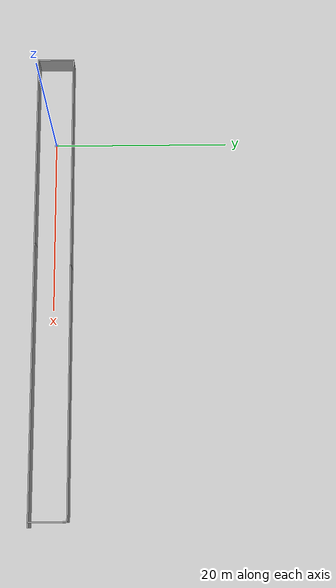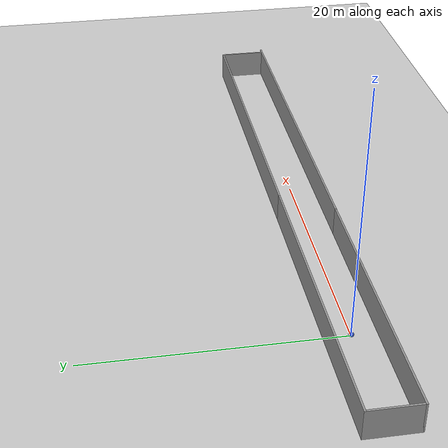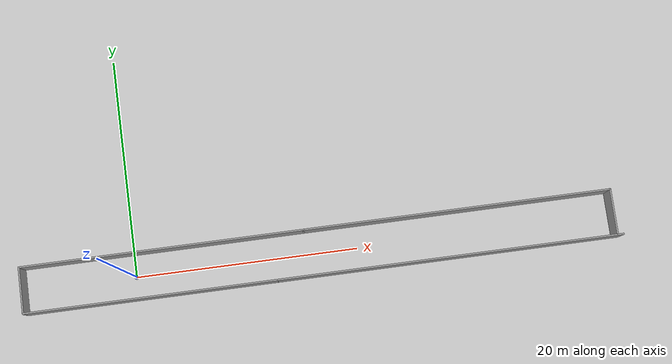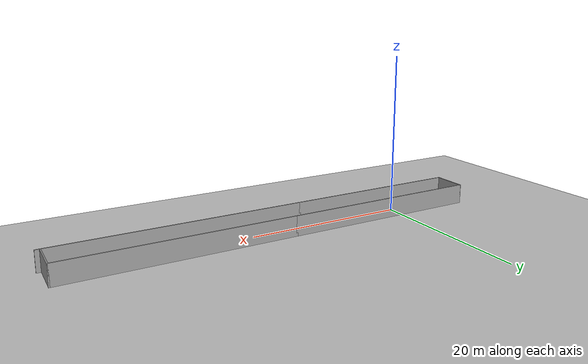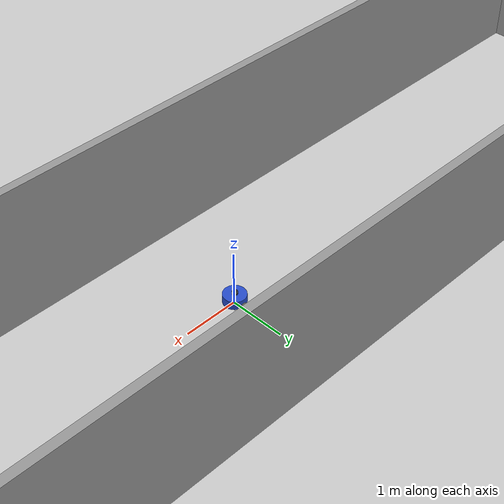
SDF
<sdf version="1.6">
 <world name="default">
  <light name="sun" type="directional">
   <pose>0 0 10 0 -0 0</pose>
   <diffuse>0.8 0.8 0.8 1</diffuse>
   <specular>0.1 0.1 0.1 1</specular>
   <attenuation>
    <range>1000</range>
    <constant>0.9</constant>
    <linear>0.01</linear>
    <quadratic>0.001</quadratic>
   </attenuation>
   <direction>-0.5 0.5 -1</direction>
  </light>
  <model name="ground_plane">
   <static>1</static>
   <link name="link">
    <collision name="collision">
     <geometry><plane><normal>0 0 1</normal><size>100 100</size></plane></geometry>
     <surface><friction><ode><mu>100</mu><mu2>50</mu2></ode></friction></surface>
    </collision>
    <visual name="visual">
     <cast_shadows>0</cast_shadows>
     <geometry><plane><normal>0 0 1</normal><size>100 100</size></plane></geometry>
     <material>
      <script><uri>file://media/materials/scripts/gazebo.material</uri><name>Gazebo/Grey</name></script>
     </material>
    </visual>
   </link>
  </model>
  <gravity>0 0 -9.8</gravity>
  <magnetic_field>6e-06 2.3e-05 -4.2e-05</magnetic_field>
  <atmosphere type="adiabatic"/>
  <physics name="default_physics" default="0" type="ode">
   <max_step_size>0.001</max_step_size>
   <real_time_factor>1</real_time_factor>
   <real_time_update_rate>1000</real_time_update_rate>
  </physics>
  <scene><ambient>0.4 0.4 0.4 1</ambient><background>0.7 0.7 0.7 1</background><shadows>1</shadows></scene>
  <spherical_coordinates>
   <surface_model>EARTH_WGS84</surface_model>
   <latitude_deg>0</latitude_deg>
   <longitude_deg>0</longitude_deg>
   <elevation>0</elevation>
   <heading_deg>0</heading_deg>
  </spherical_coordinates>
  <model name="mbot">
   <link name="base_footprint">
    <inertial>
     <pose>0 0 0.110522 0 -0 0</pose>
     <mass>20.1</mass>
     <inertia><ixx>0.253764</ixx><ixy>0</ixy><ixz>0</ixz><iyy>0.253764</iyy><iyz>0</iyz><izz>0.41</izz></inertia>
    </inertial>
    <collision name="base_footprint_fixed_joint_lump__base_link_collision">
     <pose>0 0 0.11 0 -0 0</pose>
     <geometry><cylinder><length>0.16</length><radius>0.2</radius></cylinder></geometry>
    </collision>
    <collision name="base_footprint_fixed_joint_lump__laser_link_collision_1">
     <pose>0 0 0.215 0 -0 0</pose>
     <geometry><cylinder><length>0.06</length><radius>0.05</radius></cylinder></geometry>
    </collision>
    <visual name="base_footprint_visual">
     <geometry><box><size>0.001 0.001 0.001</size></box></geometry>
     <material><script><uri>__default__</uri><name>__default__</name></script></material>
    </visual>
    <visual name="base_footprint_fixed_joint_lump__base_link_visual_1">
     <pose>0 0 0.11 0 -0 0</pose>
     <geometry><cylinder><length>0.16</length><radius>0.2</radius></cylinder></geometry>
     <material>
      <script><name>Gazebo/Blue</name><uri>file://media/materials/scripts/gazebo.material</uri></script>
     </material>
    </visual>
    <visual name="base_footprint_fixed_joint_lump__laser_link_visual_2">
     <pose>0 0 0.215 0 -0 0</pose>
     <geometry><cylinder><length>0.05</length><radius>0.05</radius></cylinder></geometry>
     <material>
      <script><name>Gazebo/Black</name><uri>file://media/materials/scripts/gazebo.material</uri></script>
     </material>
    </visual>
    <sensor name="rplidar" type="ray">
     <visualize>0</visualize>
     <update_rate>5.5</update_rate>
     <ray>
      <scan>
       <horizontal>
        <samples>360</samples>
        <resolution>1</resolution>
        <min_angle>-3</min_angle>
        <max_angle>3</max_angle>
       </horizontal>
       <vertical><samples>1</samples><min_angle>0</min_angle><max_angle>0</max_angle></vertical>
      </scan>
      <range><min>0.1</min><max>6</max><resolution>0.01</resolution></range>
      <noise><type>gaussian</type><mean>0</mean><stddev>0.01</stddev></noise>
     </ray>
     <plugin name="gazebo_rplidar" filename="libgazebo_ros_laser.so">
      <topicName>/scan</topicName>
      <frameName>laser_link</frameName>
      <robotNamespace>/</robotNamespace>
     </plugin>
     <pose>0 0 0.215 0 -0 0</pose>
    </sensor>
   </link>
   <link name="back_caster_link">
    <pose>0.18 0 0.015 0 -0 0</pose>
    <inertial>
     <mass>0.5</mass>
     <inertia><ixx>4.5e-05</ixx><ixy>0</ixy><ixz>0</ixz><iyy>4.5e-05</iyy><iyz>0</iyz><izz>4.5e-05</izz></inertia>
    </inertial>
    <collision name="back_caster_link_collision">
     <geometry><sphere><radius>0.015</radius></sphere></geometry>
    </collision>
    <visual name="back_caster_link_visual">
     <geometry><sphere><radius>0.015</radius></sphere></geometry>
     <material>
      <script><name>Gazebo/Black</name><uri>file://media/materials/scripts/gazebo.material</uri></script>
     </material>
    </visual>
   </link>
   <joint name="back_caster_joint" type="revolute">
    <child>back_caster_link</child>
    <parent>base_footprint</parent>
    <axis>
     <xyz>0 1 0</xyz>
     <limit><lower>-1e+16</lower><upper>1e+16</upper></limit>
     <dynamics><spring_reference>0</spring_reference><spring_stiffness>0</spring_stiffness></dynamics>
     <use_parent_model_frame>1</use_parent_model_frame>
    </axis>
   </joint>
   <link name="front_caster_link">
    <pose>-0.18 0 0.015 0 -0 0</pose>
    <inertial>
     <mass>0.5</mass>
     <inertia><ixx>4.5e-05</ixx><ixy>0</ixy><ixz>0</ixz><iyy>4.5e-05</iyy><iyz>0</iyz><izz>4.5e-05</izz></inertia>
    </inertial>
    <collision name="front_caster_link_collision">
     <geometry><sphere><radius>0.015</radius></sphere></geometry>
    </collision>
    <visual name="front_caster_link_visual">
     <geometry><sphere><radius>0.015</radius></sphere></geometry>
     <material>
      <script><name>Gazebo/Black</name><uri>file://media/materials/scripts/gazebo.material</uri></script>
     </material>
    </visual>
   </link>
   <joint name="front_caster_joint" type="revolute">
    <child>front_caster_link</child>
    <parent>base_footprint</parent>
    <axis>
     <xyz>0 1 0</xyz>
     <limit><lower>-1e+16</lower><upper>1e+16</upper></limit>
     <dynamics><spring_reference>0</spring_reference><spring_stiffness>0</spring_stiffness></dynamics>
     <use_parent_model_frame>1</use_parent_model_frame>
    </axis>
   </joint>
   <link name="left_wheel_link">
    <pose>0 -0.19 0.06 0 -0 0</pose>
    <inertial>
     <mass>2</mass>
     <inertia>
      <ixx>0.00190417</ixx>
      <ixy>0</ixy>
      <ixz>0</ixz>
      <iyy>0.00190417</iyy>
      <iyz>0</iyz>
      <izz>0.0036</izz>
     </inertia>
    </inertial>
    <collision name="left_wheel_link_collision">
     <pose>0 0 0 1.5708 -0 0</pose>
     <geometry><cylinder><length>0.025</length><radius>0.06</radius></cylinder></geometry>
    </collision>
    <visual name="left_wheel_link_visual">
     <pose>0 0 0 1.5708 -0 0</pose>
     <geometry><cylinder><length>0.025</length><radius>0.06</radius></cylinder></geometry>
     <material>
      <script><name>Gazebo/Gray</name><uri>file://media/materials/scripts/gazebo.material</uri></script>
     </material>
    </visual>
   </link>
   <joint name="left_wheel_joint" type="revolute">
    <child>left_wheel_link</child>
    <parent>base_footprint</parent>
    <axis>
     <xyz>0 1 0</xyz>
     <limit><lower>-1e+16</lower><upper>1e+16</upper></limit>
     <dynamics><spring_reference>0</spring_reference><spring_stiffness>0</spring_stiffness></dynamics>
     <use_parent_model_frame>1</use_parent_model_frame>
    </axis>
   </joint>
   <link name="right_wheel_link">
    <pose>0 0.19 0.06 0 -0 0</pose>
    <inertial>
     <mass>2</mass>
     <inertia>
      <ixx>0.00190417</ixx>
      <ixy>0</ixy>
      <ixz>0</ixz>
      <iyy>0.00190417</iyy>
      <iyz>0</iyz>
      <izz>0.0036</izz>
     </inertia>
    </inertial>
    <collision name="right_wheel_link_collision">
     <pose>0 0 0 1.5708 -0 0</pose>
     <geometry><cylinder><length>0.025</length><radius>0.06</radius></cylinder></geometry>
    </collision>
    <visual name="right_wheel_link_visual">
     <pose>0 0 0 1.5708 -0 0</pose>
     <geometry><cylinder><length>0.025</length><radius>0.06</radius></cylinder></geometry>
     <material>
      <script><name>Gazebo/Gray</name><uri>file://media/materials/scripts/gazebo.material</uri></script>
     </material>
    </visual>
   </link>
   <joint name="right_wheel_joint" type="revolute">
    <child>right_wheel_link</child>
    <parent>base_footprint</parent>
    <axis>
     <xyz>0 1 0</xyz>
     <limit><lower>-1e+16</lower><upper>1e+16</upper></limit>
     <dynamics><spring_reference>0</spring_reference><spring_stiffness>0</spring_stiffness></dynamics>
     <use_parent_model_frame>1</use_parent_model_frame>
    </axis>
   </joint>
   <static>0</static>
   <plugin name="differential_drive_controller" filename="libgazebo_ros_diff_drive.so">
    <rosDebugLevel>Debug</rosDebugLevel>
    <publishWheelTF>true</publishWheelTF>
    <robotNamespace>/</robotNamespace>
    <publishTf>1</publishTf>
    <publishWheelJointState>true</publishWheelJointState>
    <alwaysOn>true</alwaysOn>
    <updateRate>100.0</updateRate>
    <legacyMode>true</legacyMode>
    <leftJoint>left_wheel_joint</leftJoint>
    <rightJoint>right_wheel_joint</rightJoint>
    <wheelSeparation>0.38</wheelSeparation>
    <wheelDiameter>0.12</wheelDiameter>
    <broadcastTF>1</broadcastTF>
    <wheelTorque>30</wheelTorque>
    <wheelAcceleration>1.8</wheelAcceleration>
    <commandTopic>cmd_vel</commandTopic>
    <odometryFrame>odom</odometryFrame>
    <odometryTopic>odom</odometryTopic>
    <robotBaseFrame>base_footprint</robotBaseFrame>
   </plugin>
   <pose>-0.001701 0.008882 0 0 -0 0.006999</pose>
  </model>
  <model name="corridor">
   <pose>16.785 0 0 0 -0 0</pose>
   <link name="Wall_1">
    <collision name="Wall_1_Collision">
     <geometry><box><size>22.75 0.15 2.5</size></box></geometry>
     <pose>0 0 1.25 0 -0 0</pose>
    </collision>
    <visual name="Wall_1_Visual">
     <pose>0 0 1.25 0 -0 0</pose>
     <geometry><box><size>22.75 0.15 2.5</size></box></geometry>
     <material>
      <script><uri>file://media/materials/scripts/gazebo.material</uri><name>Gazebo/Grey</name></script>
      <ambient>1 1 1 1</ambient>
     </material>
    </visual>
    <pose>-15.425 -2.05 0 0 -0 0</pose>
   </link>
   <link name="Wall_3">
    <collision name="Wall_3_Collision">
     <geometry><box><size>4.25 0.15 2.5</size></box></geometry>
     <pose>0 0 1.25 0 -0 0</pose>
    </collision>
    <visual name="Wall_3_Visual">
     <pose>0 0 1.25 0 -0 0</pose>
     <geometry><box><size>4.25 0.15 2.5</size></box></geometry>
     <material>
      <script><uri>file://media/materials/scripts/gazebo.material</uri><name>Gazebo/Grey</name></script>
      <ambient>1 1 1 1</ambient>
     </material>
    </visual>
    <pose>-26.725 0 0 0 -0 1.5708</pose>
   </link>
   <link name="Wall_4">
    <collision name="Wall_4_Collision">
     <geometry><box><size>25.5 0.15 2.5</size></box></geometry>
     <pose>0 0 1.25 0 -0 0</pose>
    </collision>
    <visual name="Wall_4_Visual">
     <pose>0 0 1.25 0 -0 0</pose>
     <geometry><box><size>25.5 0.15 2.5</size></box></geometry>
     <material>
      <script><uri>file://media/materials/scripts/gazebo.material</uri><name>Gazebo/Grey</name></script>
      <ambient>1 1 1 1</ambient>
     </material>
    </visual>
    <pose>-14.05 2.05 0 0 -0 0</pose>
   </link>
   <link name="Wall_6">
    <collision name="Wall_6_Collision">
     <geometry><box><size>31 0.15 2.5</size></box></geometry>
     <pose>0 0 1.25 0 -0 0</pose>
    </collision>
    <visual name="Wall_6_Visual">
     <pose>0 0 1.25 0 -0 0</pose>
     <geometry><box><size>31 0.15 2.5</size></box></geometry>
     <material>
      <script><uri>file://media/materials/scripts/gazebo.material</uri><name>Gazebo/Grey</name></script>
      <ambient>1 1 1 1</ambient>
     </material>
    </visual>
    <pose>11.3 -2.05 0 0 -0 0</pose>
   </link>
   <link name="Wall_8">
    <collision name="Wall_8_Collision">
     <geometry><box><size>27.75 0.15 2.5</size></box></geometry>
     <pose>0 0 1.25 0 -0 0</pose>
    </collision>
    <visual name="Wall_8_Visual">
     <pose>0 0 1.25 0 -0 0</pose>
     <geometry><box><size>27.75 0.15 2.5</size></box></geometry>
     <material>
      <script><uri>file://media/materials/scripts/gazebo.material</uri><name>Gazebo/Grey</name></script>
      <ambient>1 1 1 1</ambient>
     </material>
    </visual>
    <pose>12.425 2.05 0 0 -0 0</pose>
   </link>
   <link name="Wall_9">
    <collision name="Wall_9_Collision">
     <geometry><box><size>4.25 0.15 2.5</size></box></geometry>
     <pose>0 0 1.25 0 -0 0</pose>
    </collision>
    <visual name="Wall_9_Visual">
     <pose>0 0 1.25 0 -0 0</pose>
     <geometry><box><size>4.25 0.15 2.5</size></box></geometry>
     <material>
      <script><uri>file://media/materials/scripts/gazebo.material</uri><name>Gazebo/Grey</name></script>
      <ambient>1 1 1 1</ambient>
     </material>
    </visual>
    <pose>26.225 0 0 0 0 -1.5708</pose>
   </link>
   <static>1</static>
  </model>
 </world>
</sdf>
